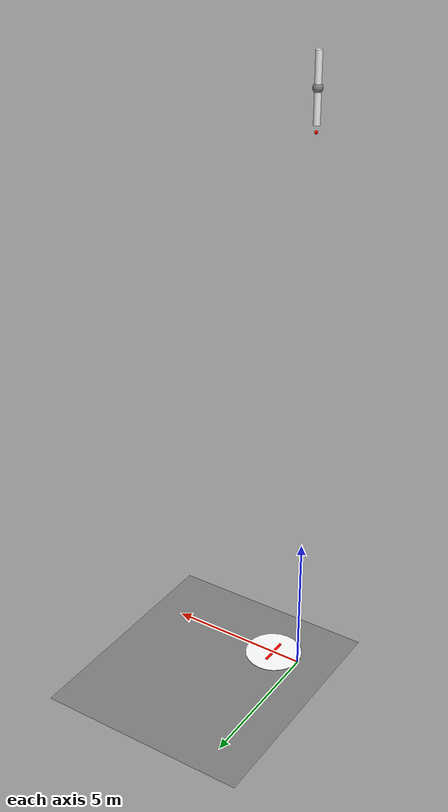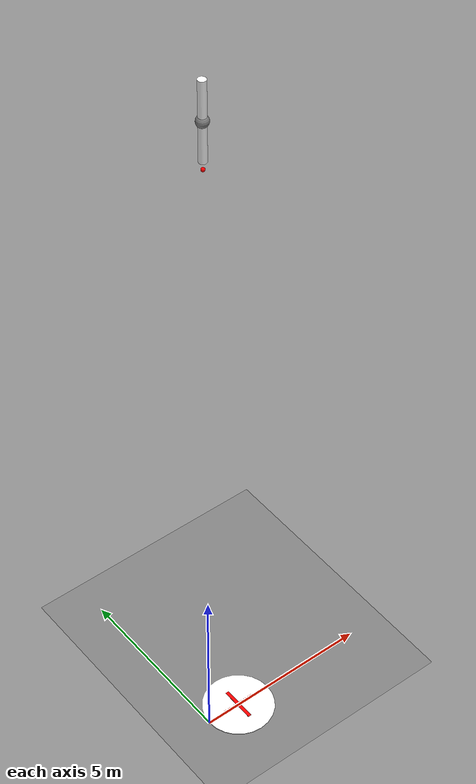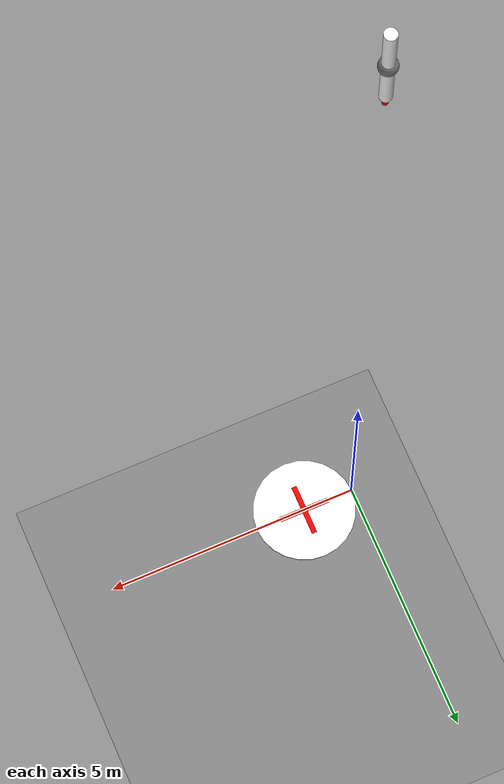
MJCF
<mujoco model="rocket_simulation">
    <option timestep="0.0001"/> <!-- 0.005 showed learning. default 0.002-->

    <!-- Assets -->
    <asset>
        <texture name="checker" type="2d" builtin="checker" width="100" height="100" rgb1="0.2 0.2 0.2" rgb2="0.8 0.8 0.8"/>
        <material name="ground" texture="checker" texrepeat="20 20" reflectance="0.2"/>
        <material name="target_material" rgba="1 0 0 0.3"/>
    </asset>

    <!-- Worldbody -->
    <worldbody>
        <!-- Floor -->
        <geom name="floor" type="plane" pos="0 0 0" size="20 20 0.1" material="ground" />

        <!-- Light Source -->
        <light name="light_source" pos="0 0 15" dir="0 0 -1" />

        <!-- Target Circle -->
        <geom name="target_circle" type="cylinder" size="1 0.01" pos="1 0 0.01" material="target_material" rgba="1 1 1 1"/>

        <!-- Target Cross -->
        <geom name="target_x1" type="box" size="0.5 0.05 0.01" pos="1 0 0.015" rgba="1 0 0 1"/>
        <geom name="target_x2" type="box" size="0.05 0.5 0.01" pos="1 0 0.015" rgba="1 0 0 1"/>

        <!-- Rocket -->
        <body name="rocket" pos="0 0 20">
            <geom name="rocket_body" type="cylinder" size="0.1 1" rgba="1 1 1 1" mass="10"/>
            <joint name="rocket_free" type="free"/>

            <!-- Thruster site -->
            <site name="thruster_site" pos="0 0 -1.2" size="0.05" rgba="1 0 0 1"/>
            <site name="gyro_site" pos="0 0 0" size="0.15"/>
        </body>
    </worldbody>
    <!-- Sensors for position, orientation, and angular velocity -->
    <!-- Sensors attached directly to the rocket body -->
    <sensor>
        <framepos name="rocket_position" objtype="body" objname="rocket"/>
        <framequat name="rocket_orientation" objtype="body" objname="rocket"/>
        <gyro name="rocket_gyro" site="gyro_site"/>
        <framelinvel name="rocket_velocity" objtype="body" objname="rocket"/>
        <frameangvel name="rocket_angular_velocity" objtype="body" objname="rocket"/>
    </sensor>
    <!-- Actuators with increased power -->
    <actuator>
        <motor name="thrust_z" site="thruster_site" gear="0 0 300 0 0 0" ctrllimited="true" ctrlrange="0 1"/>
        <motor name="thrust_x" site="thruster_site" gear="100 0 0 0 0 0" ctrllimited="true" ctrlrange="-1 1"/>
        <motor name="thrust_y" site="thruster_site" gear="0 100 0 0 0 0" ctrllimited="true" ctrlrange="-1 1"/>
    </actuator>
</mujoco>
